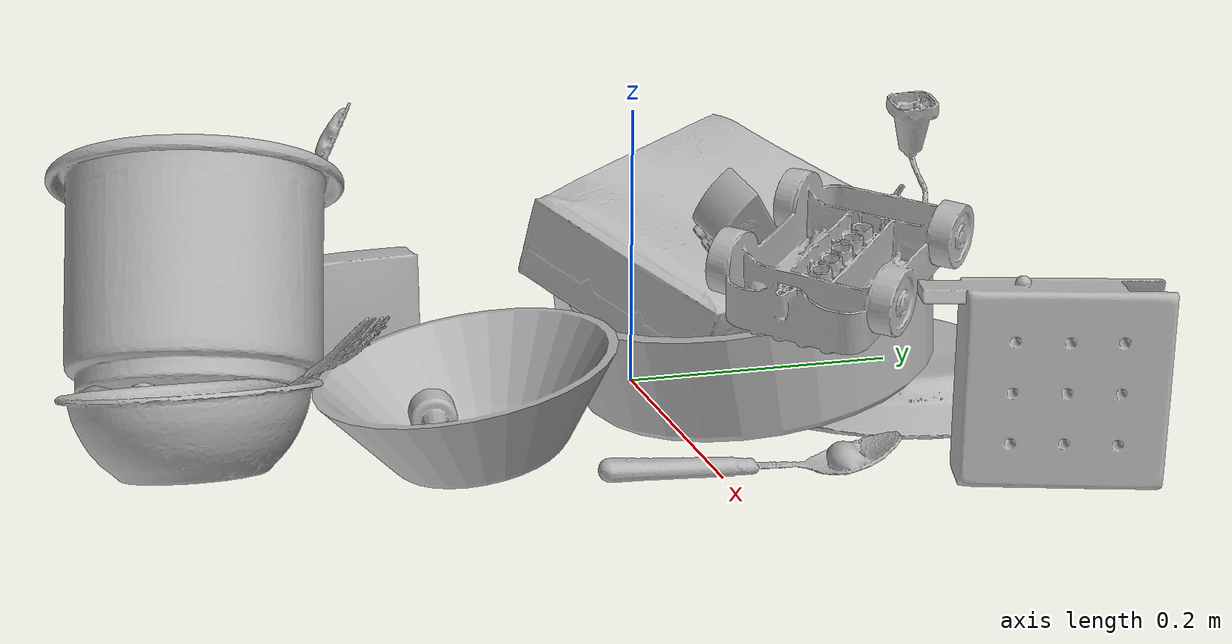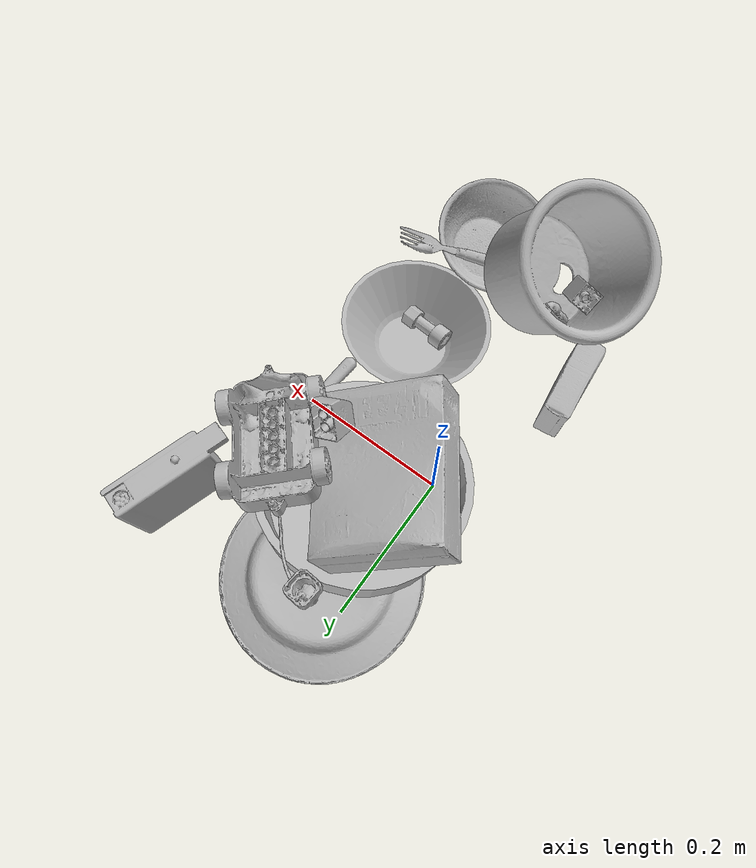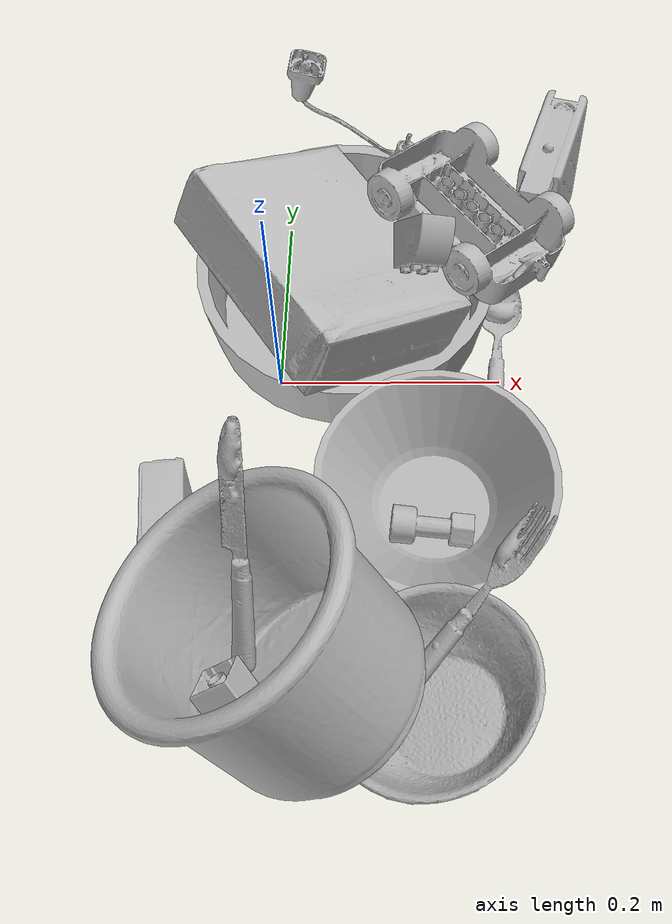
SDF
<sdf version="1.4">
  <world name="default">
    <light name="light1" type="point">
      <pose>0 0 1 0 0 0</pose>
      <diffuse>3 3 3 1</diffuse>
      <specular>3 3 3 1</specular>
    </light>
    <light name="light2" type="point">
      <pose>0 0.5 2 0 0 0</pose>
      <diffuse>1 1 1 1</diffuse>
      <specular>1 1 1 1</specular>
    </light>
    <light name="light3" type="point">
      <pose>0 0.5 2 0 0 0</pose>
      <diffuse>3 3 3 1</diffuse>
      <specular>3 3 3 1</specular>
    </light>
    <scene>
      <ambient>0.7 0.7 0.7</ambient>
    </scene>
    <model name="plate1">
      <link name="link_plate1">
        <collision name="default">
          <geometry>
            <mesh>
              <uri>model://plate/collision_meshes/collision.obj</uri>
              <scale>1.0 1.0 1.0</scale>
            </mesh>
          </geometry>
          <surface>
            <friction>
              <ode>
                <mu>0.5</mu>
                <mu2>0.5</mu2>
              </ode>
            </friction>
          <contact>
        <ode>
            <max_vel>0</max_vel>
            <min_depth>0.0001</min_depth>
            <kp>1e8</kp>
        </ode>
    </contact></surface>
        </collision>
        <visual name="default">
          <geometry>
            <mesh>
              <uri>model://plate/visual_meshes/visual.dae</uri>
              <scale>1.0 1.0 1.0</scale>
            </mesh>
          </geometry>
        </visual>
        <inertial>
          <mass>0.2518167495727539</mass>
          <pose>-0.000604460306931287 0.0002782583760563284 -0.001056198962032795 0.0022187362427659595 -0.003225514577586686 0.4526257716004426</pose>
          <inertia>
            <ixx>0.0011780038</ixx>
            <iyy>0.001166737</iyy>
            <izz>0.0023039998</izz>
            <ixy>0</ixy>
            <ixz>0</ixz>
            <iyz>0</iyz>
          </inertia>
        </inertial>
      </link>
      <pose>0.045846473425626755 0.1774536669254303 0.013613973744213581 -3.138933749356861 -0.00351022028617987 0.6700872541542673</pose>
    </model>
    <model name="plate2">
      <link name="link_plate2">
        <collision name="default">
          <geometry>
            <mesh>
              <uri>model://pan_tefal/collision_meshes/collision.obj</uri>
              <scale>1.0 1.0 1.0</scale>
            </mesh>
          </geometry>
          <surface>
            <friction>
              <ode>
                <mu>0.5</mu>
                <mu2>0.5</mu2>
              </ode>
            </friction>
          <contact>
        <ode>
            <max_vel>0</max_vel>
            <min_depth>0.0001</min_depth>
            <kp>1e8</kp>
        </ode>
    </contact></surface>
        </collision>
        <visual name="default">
          <geometry>
            <mesh>
              <uri>model://pan_tefal/visual_meshes/visual.dae</uri>
              <scale>1.0 1.0 1.0</scale>
            </mesh>
          </geometry>
        </visual>
        <inertial>
          <mass>1.062379002571106</mass>
          <pose>-0.00018001841090153903 3.2791107514640316e-05 -0.008514937944710255 0.0008190335190592257 -0.00033013878845789875 -0.3318630487039029</pose>
          <inertia>
            <ixx>0.0073335525</ixx>
            <iyy>0.007380832</iyy>
            <izz>0.013499655</izz>
            <ixy>0</ixy>
            <ixz>0</ixz>
            <iyz>0</iyz>
          </inertia>
        </inertial>
      </link>
      <pose>0.06133376806974411 0.06699499487876892 0.05935743451118469 -0.04155862459158793 -0.17663432286992703 1.8792643271340244</pose>
    </model>
    <model name="bowl1">
      <link name="link_bowl1">
        <collision name="default">
          <geometry>
            <mesh>
              <uri>model://bowl/collision_meshes/collision.obj</uri>
              <scale>1.0 1.0 1.0</scale>
            </mesh>
          </geometry>
          <surface>
            <friction>
              <ode>
                <mu>0.5</mu>
                <mu2>0.5</mu2>
              </ode>
            </friction>
          <contact>
        <ode>
            <max_vel>0</max_vel>
            <min_depth>0.0001</min_depth>
            <kp>1e8</kp>
        </ode>
    </contact></surface>
        </collision>
        <visual name="default">
          <geometry>
            <mesh>
              <uri>model://bowl/visual_meshes/visual.dae</uri>
              <scale>1.0 1.0 1.0</scale>
            </mesh>
          </geometry>
        </visual>
        <inertial>
          <mass>0.06917417049407959</mass>
          <pose>0.00020445069822017103 -0.0010302119189873338 -0.0008042645640671253 -0.015764106225313407 0.014546789960746879 0.7140402093907182</pose>
          <inertia>
            <ixx>0.00015889853</ixx>
            <iyy>0.00015534814</iyy>
            <izz>0.000267322</izz>
            <ixy>0</ixy>
            <ixz>0</ixz>
            <iyz>0</iyz>
          </inertia>
        </inertial>
      </link>
      <pose>0.13145624101161957 -0.32083651423454285 0.03817344829440117 -0.2128466407817711 0.15912544012166793 2.1337717535470286</pose>
    </model>
    <model name="bowl2">
      <link name="link_bowl2">
        <collision name="default">
          <geometry>
            <mesh>
              <uri>model://bowl_a/collision_meshes/collision.obj</uri>
              <scale>1.0 1.0 1.0</scale>
            </mesh>
          </geometry>
          <surface>
            <friction>
              <ode>
                <mu>0.5</mu>
                <mu2>0.5</mu2>
              </ode>
            </friction>
          <contact>
        <ode>
            <max_vel>0</max_vel>
            <min_depth>0.0001</min_depth>
            <kp>1e8</kp>
        </ode>
    </contact></surface>
        </collision>
        <visual name="default">
          <geometry>
            <mesh>
              <uri>model://bowl_a/visual_meshes/visual.dae</uri>
              <scale>1.0 1.0 1.0</scale>
            </mesh>
          </geometry>
        </visual>
        <inertial>
          <mass>0.33581992983818054</mass>
          <pose>0.00027867587050423026 4.7312365495599806e-05 -0.0013765293406322598 -0.0009805275277335347 -0.0010938264345752996 -0.19124334191203107</pose>
          <inertia>
            <ixx>0.00095609494</ixx>
            <iyy>0.0009619646</iyy>
            <izz>0.0017004515</izz>
            <ixy>0</ixy>
            <ixz>0</ixz>
            <iyz>0</iyz>
          </inertia>
        </inertial>
      </link>
      <pose>0.1357003152370453 -0.1458776295185089 0.03886183351278305 -0.08252623835560843 -0.14458393221691193 2.144490667602814</pose>
    </model>
    <model name="silverware1">
      <link name="link_silverware1">
        <collision name="default">
          <geometry>
            <mesh>
              <uri>model://spoon/collision_meshes/collision.obj</uri>
              <scale>1.0 1.0 1.0</scale>
            </mesh>
          </geometry>
          <surface>
            <friction>
              <ode>
                <mu>0.5</mu>
                <mu2>0.5</mu2>
              </ode>
            </friction>
          <contact>
        <ode>
            <max_vel>0</max_vel>
            <min_depth>0.0001</min_depth>
            <kp>1e8</kp>
        </ode>
    </contact></surface>
        </collision>
        <visual name="default">
          <geometry>
            <mesh>
              <uri>model://spoon/visual_meshes/visual.dae</uri>
              <scale>1.0 1.0 1.0</scale>
            </mesh>
          </geometry>
        </visual>
        <inertial>
          <mass>0.02635110728442669</mass>
          <pose>-0.005526317283511162 -0.0016034177970141172 -0.0007271651993505657 0.03521639754710896 -0.03906583271405073 0.0061506130160543454</pose>
          <inertia>
            <ixx>1.4656912e-06</ixx>
            <iyy>0.0001002651</iyy>
            <izz>0.00010098792</izz>
            <ixy>0</ixy>
            <ixz>0</ixz>
            <iyz>0</iyz>
          </inertia>
        </inertial>
      </link>
      <pose>0.19662491977214813 0.02027806080877781 0.008385262452065945 0.006731888398462157 0.026892996972028564 1.4614975943766264</pose>
    </model>
    <model name="box1">
      <link name="link_box1">
        <collision name="default">
          <geometry>
            <mesh>
              <uri>model://cracker_box/collision_meshes/collision.obj</uri>
              <scale>1.0 1.0 1.0</scale>
            </mesh>
          </geometry>
          <surface>
            <friction>
              <ode>
                <mu>0.5</mu>
                <mu2>0.5</mu2>
              </ode>
            </friction>
          <contact>
        <ode>
            <max_vel>0</max_vel>
            <min_depth>0.0001</min_depth>
            <kp>1e8</kp>
        </ode>
    </contact></surface>
        </collision>
        <visual name="default">
          <geometry>
            <mesh>
              <uri>model://cracker_box/visual_meshes/visual.dae</uri>
              <scale>1.0 1.0 1.0</scale>
            </mesh>
          </geometry>
        </visual>
        <inertial>
          <mass>1.9942995309829712</mass>
          <pose>0.0009464178583584726 0.00025434247800149024 -0.0017029533628374338 -0.00031620747948387436 -0.011106490532043566 0.0025467943028284904</pose>
          <inertia>
            <ixx>0.005072607</ixx>
            <iyy>0.008375872</iyy>
            <izz>0.011953138</izz>
            <ixy>0</ixy>
            <ixz>0</ixz>
            <iyz>0</iyz>
          </inertia>
        </inertial>
      </link>
      <pose>0.041911929845809937 0.04300146549940109 0.11495248228311539 0.3482242573620197 -0.14188689973082952 2.183945326808277</pose>
    </model>
    <model name="box2">
      <link name="link_box2">
        <collision name="default">
          <geometry>
            <mesh>
              <uri>model://pudding_box/collision_meshes/collision.obj</uri>
              <scale>1.0 1.0 1.0</scale>
            </mesh>
          </geometry>
          <surface>
            <friction>
              <ode>
                <mu>0.5</mu>
                <mu2>0.5</mu2>
              </ode>
            </friction>
          <contact>
        <ode>
            <max_vel>0</max_vel>
            <min_depth>0.0001</min_depth>
            <kp>1e8</kp>
        </ode>
    </contact></surface>
        </collision>
        <visual name="default">
          <geometry>
            <mesh>
              <uri>model://pudding_box/visual_meshes/visual.dae</uri>
              <scale>1.0 1.0 1.0</scale>
            </mesh>
          </geometry>
        </visual>
        <inertial>
          <mass>0.5201411247253418</mass>
          <pose>0.0004894821904599667 0.0008067885646596551 -0.0005188828217796981 0.00521310178321913 -0.006603799649863257 0.020079825157321304</pose>
          <inertia>
            <ixx>0.0005879929</ixx>
            <iyy>0.00039560578</iyy>
            <izz>0.00086832506</izz>
            <ixy>0</ixy>
            <ixz>0</ixz>
            <iyz>0</iyz>
          </inertia>
        </inertial>
      </link>
      <pose>-0.07111825048923492 -0.2000751495361328 0.044596608728170395 0.0066865163296813915 -1.5473132844694866 -3.040301390335043</pose>
    </model>
    <model name="cup1">
      <link name="link_cup1">
        <collision name="default">
          <geometry>
            <mesh>
              <uri>model://i_cups/collision_meshes/collision.obj</uri>
              <scale>2.0 2.0 2.0</scale>
            </mesh>
          </geometry>
          <surface>
            <friction>
              <ode>
                <mu>0.5</mu>
                <mu2>0.5</mu2>
              </ode>
            </friction>
          <contact>
        <ode>
            <max_vel>0</max_vel>
            <min_depth>0.0001</min_depth>
            <kp>1e8</kp>
        </ode>
    </contact></surface>
        </collision>
        <visual name="default">
          <geometry>
            <mesh>
              <uri>model://i_cups/visual_meshes/visual.dae</uri>
              <scale>2.0 2.0 2.0</scale>
            </mesh>
          </geometry>
        </visual>
        <inertial>
          <mass>0.946932315826416</mass>
          <pose>0.00022480011102743447 0.0003359477559570223 -0.0017158038681373 -0.02898277199923076 -0.03987335280003036 -0.34591530516328983</pose>
          <inertia>
            <ixx>0.005244167</ixx>
            <iyy>0.0052903723</iyy>
            <izz>0.005861205</izz>
            <ixy>0</ixy>
            <ixz>0</ixz>
            <iyz>0</iyz>
          </inertia>
        </inertial>
      </link>
      <pose>0.021037157624959946 -0.30835676193237305 0.10115554183721542 0.14773124767368356 0.47232866473609336 -3.0110602487442724</pose>
    </model>
    <model name="silverware2">
      <link name="link_silverware2">
        <collision name="default">
          <geometry>
            <mesh>
              <uri>model://fork/collision_meshes/collision.obj</uri>
              <scale>1.0 1.0 1.0</scale>
            </mesh>
          </geometry>
          <surface>
            <friction>
              <ode>
                <mu>0.5</mu>
                <mu2>0.5</mu2>
              </ode>
            </friction>
          <contact>
        <ode>
            <max_vel>0</max_vel>
            <min_depth>0.0001</min_depth>
            <kp>1e8</kp>
        </ode>
    </contact></surface>
        </collision>
        <visual name="default">
          <geometry>
            <mesh>
              <uri>model://fork/visual_meshes/visual.dae</uri>
              <scale>1.0 1.0 1.0</scale>
            </mesh>
          </geometry>
        </visual>
        <inertial>
          <mass>0.03207480534911156</mass>
          <pose>-0.02957005240023136 0.00046588238910771906 0.0003218861820641905 -0.013551414501779666 -0.010977842682601763 0.014453906756127453</pose>
          <inertia>
            <ixx>1.1244033e-06</ixx>
            <iyy>8.373807e-05</iyy>
            <izz>8.424099e-05</izz>
            <ixy>0</ixy>
            <ixz>0</ixz>
            <iyz>0</iyz>
          </inertia>
        </inertial>
      </link>
      <pose>0.15276779234409332 -0.26768067479133606 0.06410720199346542 -0.1251066955798758 -0.6127234325808174 0.7176747163350065</pose>
    </model>
    <model name="silverware3">
      <link name="link_silverware3">
        <collision name="default">
          <geometry>
            <mesh>
              <uri>model://knife/collision_meshes/collision.obj</uri>
              <scale>1.0 1.0 1.0</scale>
            </mesh>
          </geometry>
          <surface>
            <friction>
              <ode>
                <mu>0.5</mu>
                <mu2>0.5</mu2>
              </ode>
            </friction>
          <contact>
        <ode>
            <max_vel>0</max_vel>
            <min_depth>0.0001</min_depth>
            <kp>1e8</kp>
        </ode>
    </contact></surface>
        </collision>
        <visual name="default">
          <geometry>
            <mesh>
              <uri>model://knife/visual_meshes/visual.dae</uri>
              <scale>1.0 1.0 1.0</scale>
            </mesh>
          </geometry>
        </visual>
        <inertial>
          <mass>0.02260335348546505</mass>
          <pose>-0.023785259574651718 0.0015275129117071629 5.062025593360886e-05 0.073049853839256 0.017248417767033373 -0.0074098225522862896</pose>
          <inertia>
            <ixx>6.41575e-07</ixx>
            <iyy>8.6838445e-05</iyy>
            <izz>8.704508e-05</izz>
            <ixy>0</ixy>
            <ixz>0</ixz>
            <iyz>0</iyz>
          </inertia>
        </inertial>
      </link>
      <pose>-0.00985261332243681 -0.2443268746137619 0.11647336184978485 2.925674436956626 -1.125323921683458 1.536831448552</pose>
    </model>
    <model name="toy1">
      <link name="link_toy1">
        <collision name="default">
          <geometry>
            <mesh>
              <uri>model://nine_hole_peg_test/collision_meshes/collision.obj</uri>
              <scale>1.0 1.0 1.0</scale>
            </mesh>
          </geometry>
          <surface>
            <friction>
              <ode>
                <mu>0.5</mu>
                <mu2>0.5</mu2>
              </ode>
            </friction>
          <contact>
        <ode>
            <max_vel>0</max_vel>
            <min_depth>0.0001</min_depth>
            <kp>1e8</kp>
        </ode>
    </contact></surface>
        </collision>
        <visual name="default">
          <geometry>
            <mesh>
              <uri>model://nine_hole_peg_test/visual_meshes/visual.dae</uri>
              <scale>1.0 1.0 1.0</scale>
            </mesh>
          </geometry>
        </visual>
        <inertial>
          <mass>0.3368244469165802</mass>
          <pose>-0.0046173869632184505 -0.009647615253925323 2.6460689696250483e-05 -0.001466679946039042 0.000719417968587533 -0.6342416610336568</pose>
          <inertia>
            <ixx>0.00052668044</ixx>
            <iyy>0.000491756</iyy>
            <izz>0.00092289934</izz>
            <ixy>0</ixy>
            <ixz>0</ixz>
            <iyz>0</iyz>
          </inertia>
        </inertial>
      </link>
      <pose>0.25217196345329285 0.19035722315311432 0.06864653527736664 -1.5285468466601353 -1.5637998302190963 -1.926068798193726</pose>
    </model>
    <model name="toy2">
      <link name="link_toy2">
        <collision name="default">
          <geometry>
            <mesh>
              <uri>model://c_toy_airplane/collision_meshes/collision.obj</uri>
              <scale>1.0 1.0 1.0</scale>
            </mesh>
          </geometry>
          <surface>
            <friction>
              <ode>
                <mu>0.5</mu>
                <mu2>0.5</mu2>
              </ode>
            </friction>
          <contact>
        <ode>
            <max_vel>0</max_vel>
            <min_depth>0.0001</min_depth>
            <kp>1e8</kp>
        </ode>
    </contact></surface>
        </collision>
        <visual name="default">
          <geometry>
            <mesh>
              <uri>model://c_toy_airplane/visual_meshes/visual.dae</uri>
              <scale>1.0 1.0 1.0</scale>
            </mesh>
          </geometry>
        </visual>
        <inertial>
          <mass>0.025849465280771255</mass>
          <pose>-0.000230242803809233 -4.4294804979472246e-07 -0.006080531980842352 -0.006193997552816779 -0.016797268968147806 0.7655666586292194</pose>
          <inertia>
            <ixx>1.1869546e-05</ixx>
            <iyy>1.1836047e-05</iyy>
            <izz>2.7867347e-06</izz>
            <ixy>0</ixy>
            <ixz>0</ixz>
            <iyz>0</iyz>
          </inertia>
        </inertial>
      </link>
      <pose>0.13224326074123383 -0.16943594813346863 0.024539772421121597 -1.6514250903575665 0.19451517108232547 -1.6723348672100127</pose>
    </model>
    <model name="toy3">
      <link name="link_toy3">
        <collision name="default">
          <geometry>
            <mesh>
              <uri>model://g_lego_duplo/collision_meshes/collision.obj</uri>
              <scale>1.0 1.0 1.0</scale>
            </mesh>
          </geometry>
          <surface>
            <friction>
              <ode>
                <mu>0.5</mu>
                <mu2>0.5</mu2>
              </ode>
            </friction>
          <contact>
        <ode>
            <max_vel>0</max_vel>
            <min_depth>0.0001</min_depth>
            <kp>1e8</kp>
        </ode>
    </contact></surface>
        </collision>
        <visual name="default">
          <geometry>
            <mesh>
              <uri>model://g_lego_duplo/visual_meshes/visual.dae</uri>
              <scale>1.0 1.0 1.0</scale>
            </mesh>
          </geometry>
        </visual>
        <inertial>
          <mass>0.44857048988342285</mass>
          <pose>-0.05004768818616867 0.0017554624937474728 0.0038806761149317026 0.010962989380518968 0.03810827633819491 -0.09653029550410545</pose>
          <inertia>
            <ixx>0.0006499838</ixx>
            <iyy>0.00196511</iyy>
            <izz>0.0024584262</izz>
            <ixy>0</ixy>
            <ixz>0</ixz>
            <iyz>0</iyz>
          </inertia>
        </inertial>
      </link>
      <pose>0.1268566995859146 0.12871575355529785 0.1425681859254837 -3.0507634677964366 -0.22224820110301824 2.31419828377367</pose>
    </model>
    <model name="toy4">
      <link name="link_toy4">
        <collision name="default">
          <geometry>
            <mesh>
              <uri>model://b_lego_duplo/collision_meshes/collision.obj</uri>
              <scale>1.0 1.0 1.0</scale>
            </mesh>
          </geometry>
          <surface>
            <friction>
              <ode>
                <mu>0.5</mu>
                <mu2>0.5</mu2>
              </ode>
            </friction>
          <contact>
        <ode>
            <max_vel>0</max_vel>
            <min_depth>0.0001</min_depth>
            <kp>1e8</kp>
        </ode>
    </contact></surface>
        </collision>
        <visual name="default">
          <geometry>
            <mesh>
              <uri>model://b_lego_duplo/visual_meshes/visual.dae</uri>
              <scale>1.0 1.0 1.0</scale>
            </mesh>
          </geometry>
        </visual>
        <inertial>
          <mass>0.028142115101218224</mass>
          <pose>-0.00011053047637687996 -9.15253895072965e-06 0.0019294291269034147 -0.03749502345465157 -0.02635389323626884 0.4519044936865358</pose>
          <inertia>
            <ixx>5.759495e-06</ixx>
            <iyy>5.798213e-06</iyy>
            <izz>5.1315224e-06</izz>
            <ixy>0</ixy>
            <ixz>0</ixz>
            <iyz>0</iyz>
          </inertia>
        </inertial>
      </link>
      <pose>-0.014377737417817116 -0.3226439654827118 0.046979181468486786 2.535791366409475 -0.5479488996853468 0.17728178210501622</pose>
    </model>
    <model name="toy5">
      <link name="link_toy5">
        <collision name="default">
          <geometry>
            <mesh>
              <uri>model://d_lego_duplo/collision_meshes/collision.obj</uri>
              <scale>1.0 1.0 1.0</scale>
            </mesh>
          </geometry>
          <surface>
            <friction>
              <ode>
                <mu>0.5</mu>
                <mu2>0.5</mu2>
              </ode>
            </friction>
          <contact>
        <ode>
            <max_vel>0</max_vel>
            <min_depth>0.0001</min_depth>
            <kp>1e8</kp>
        </ode>
    </contact></surface>
        </collision>
        <visual name="default">
          <geometry>
            <mesh>
              <uri>model://d_lego_duplo/visual_meshes/visual.dae</uri>
              <scale>1.0 1.0 1.0</scale>
            </mesh>
          </geometry>
        </visual>
        <inertial>
          <mass>0.03456217050552368</mass>
          <pose>0.00283056334592402 0.00016366186900995672 0.0008589798817411065 0.08010865489808279 -0.3835519084219494 0.001029683970252444</pose>
          <inertia>
            <ixx>6.6907255e-06</ixx>
            <iyy>9.495956e-06</iyy>
            <izz>9.1575175e-06</izz>
            <ixy>0</ixy>
            <ixz>0</ixz>
            <iyz>0</iyz>
          </inertia>
        </inertial>
      </link>
      <pose>0.1277073621749878 0.026995109394192696 0.14792101085186005 -2.552137252365056 0.77150934279482 2.3244170589598534</pose>
    </model>
  <physics type="ode">
      <max_contacts>50</max_contacts>
      <ode>
        <solver>
          <type>quick</type>
          <iters>75</iters>
        </solver>
        <constraints>
          <contact_max_correcting_vel>0</contact_max_correcting_vel>
          <contact_surface_layer>0</contact_surface_layer>
        </constraints>
      </ode>
    </physics></world>
</sdf>
